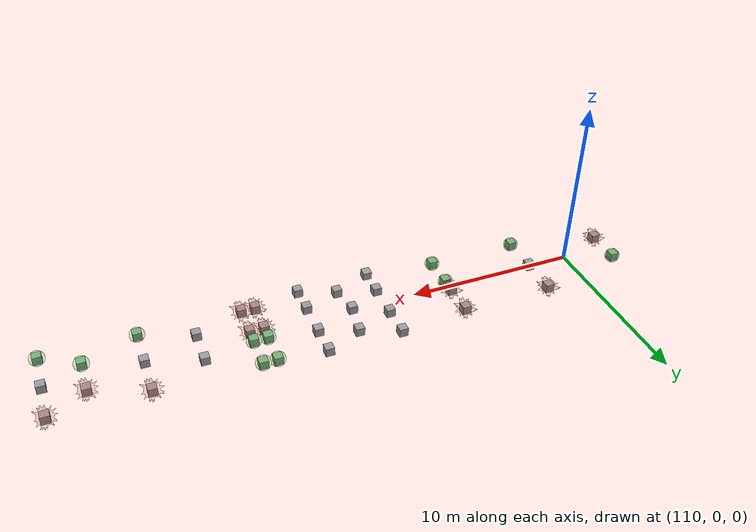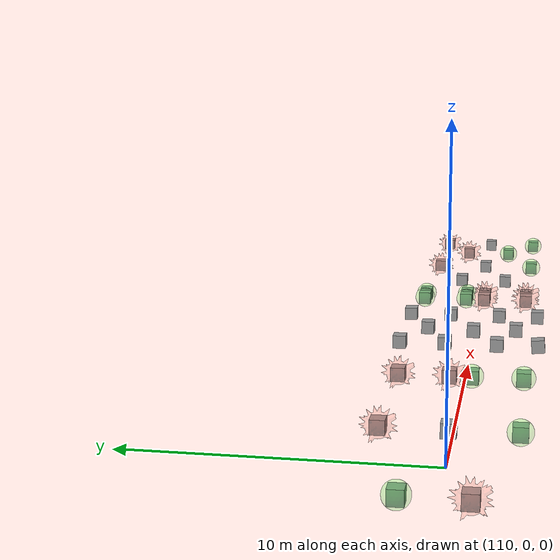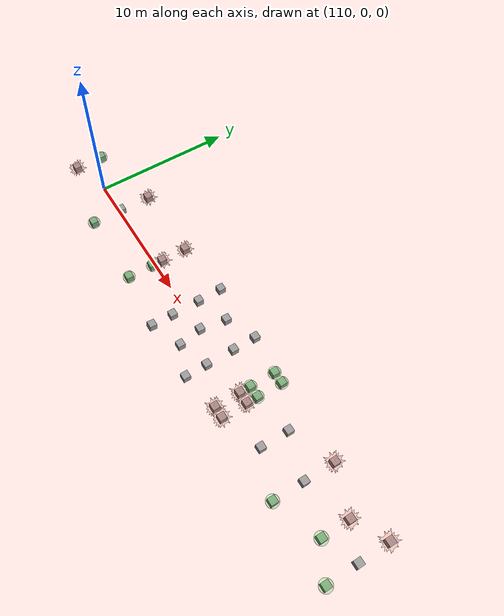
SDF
<sdf version="1.6">
 <world name="default">
  <model name="trap_discr_4_ubias_m">
   <static>0</static>
   <static>0</static>
   <link name="repel_cue_0::vis_cue_repel">
    <inertial>
     <mass>1</mass>
     <inertia>
      <ixx>0.166667</ixx>
      <ixy>0</ixy>
      <ixz>0</ixz>
      <iyy>0.166667</iyy>
      <iyz>0</iyz>
      <izz>0.166667</izz>
     </inertia>
    </inertial>
    <collision name="collision"><geometry><box><size>0.5 0.5 0.5</size></box></geometry></collision>
    <visual name="box_visual">
     <geometry><box><size>0.5 0.5 0.5</size></box></geometry>
     <material>
      <script><name>Gazebo/Grey</name><uri>file://media/materials/scripts/gazebo.material</uri></script>
     </material>
    </visual>
    <visual name="cue_visual">
     <geometry><mesh><uri>model://repelling_cue_2.dae</uri><scale>0.85 0.85 0.85</scale></mesh></geometry>
     <material>
      <ambient>1 0.3 0.2 0.2</ambient>
      <diffuse>1 0.3 0.2 0.2</diffuse>
      <specular>1 0.3 0.2 0.5</specular>
      <emissive>0.5 0 0 0.1</emissive>
     </material>
    </visual>
    <pose>0 -1 0.25 0 -0 0</pose>
   </link>
   <static>0</static>
   <link name="attract_cue_0::vis_cue_attract">
    <inertial>
     <mass>1</mass>
     <inertia>
      <ixx>0.166667</ixx>
      <ixy>0</ixy>
      <ixz>0</ixz>
      <iyy>0.166667</iyy>
      <iyz>0</iyz>
      <izz>0.166667</izz>
     </inertia>
    </inertial>
    <collision name="collision"><geometry><box><size>0.5 0.5 0.5</size></box></geometry></collision>
    <visual name="box_visual">
     <geometry><box><size>0.5 0.5 0.5</size></box></geometry>
     <material>
      <script><name>Gazebo/Grey</name><uri>file://media/materials/scripts/gazebo.material</uri></script>
     </material>
    </visual>
    <visual name="cue_visual">
     <geometry>
      <mesh><uri>model://vis_cue_attract/meshes/sphere.stl</uri><scale>0.85 0.85 0.85</scale></mesh>
     </geometry>
     <material>
      <ambient>0 1 0 0.15</ambient>
      <diffuse>0 1 0 0.15</diffuse>
      <specular>0 1 0 0.15</specular>
      <emissive>0 0 0 0</emissive>
     </material>
    </visual>
    <pose>0 1 0.25 0 -0 0</pose>
   </link>
   <pose>107.352 0.120059 3e-06 7e-06 -7e-06 0</pose>
  </model>
  <model name="trap_discr_3_ubias">
   <static>0</static>
   <static>0</static>
   <link name="attract_cue_0::vis_cue_attract">
    <inertial>
     <mass>1</mass>
     <inertia>
      <ixx>0.166667</ixx>
      <ixy>0</ixy>
      <ixz>0</ixz>
      <iyy>0.166667</iyy>
      <iyz>0</iyz>
      <izz>0.166667</izz>
     </inertia>
    </inertial>
    <collision name="collision"><geometry><box><size>0.5 0.5 0.5</size></box></geometry></collision>
    <visual name="box_visual">
     <geometry><box><size>0.5 0.5 0.5</size></box></geometry>
     <material>
      <script><name>Gazebo/Grey</name><uri>file://media/materials/scripts/gazebo.material</uri></script>
     </material>
    </visual>
    <visual name="cue_visual">
     <geometry>
      <mesh><uri>model://vis_cue_attract/meshes/sphere.stl</uri><scale>0.85 0.85 0.85</scale></mesh>
     </geometry>
     <material>
      <ambient>0 1 0 0.15</ambient>
      <diffuse>0 1 0 0.15</diffuse>
      <specular>0 1 0 0.15</specular>
      <emissive>0 0 0 0</emissive>
     </material>
    </visual>
    <pose>0 -2.2 0.25 0 -0 0</pose>
   </link>
   <static>0</static>
   <link name="normal_cue_0::vis_cue_normal">
    <inertial>
     <mass>1</mass>
     <inertia>
      <ixx>0.166667</ixx>
      <ixy>0</ixy>
      <ixz>0</ixz>
      <iyy>0.166667</iyy>
      <iyz>0</iyz>
      <izz>0.166667</izz>
     </inertia>
    </inertial>
    <collision name="collision"><geometry><box><size>0.5 0.5 0.5</size></box></geometry></collision>
    <visual name="box_visual">
     <geometry><box><size>0.5 0.5 0.5</size></box></geometry>
     <material>
      <script><name>Gazebo/Grey</name><uri>file://media/materials/scripts/gazebo.material</uri></script>
     </material>
    </visual>
    <pose>0 0 0.25 0 -0 0</pose>
   </link>
   <static>0</static>
   <link name="repel_cue_0::vis_cue_repel">
    <inertial>
     <mass>1</mass>
     <inertia>
      <ixx>0.166667</ixx>
      <ixy>0</ixy>
      <ixz>0</ixz>
      <iyy>0.166667</iyy>
      <iyz>0</iyz>
      <izz>0.166667</izz>
     </inertia>
    </inertial>
    <collision name="collision"><geometry><box><size>0.5 0.5 0.5</size></box></geometry></collision>
    <visual name="box_visual">
     <geometry><box><size>0.5 0.5 0.5</size></box></geometry>
     <material>
      <script><name>Gazebo/Grey</name><uri>file://media/materials/scripts/gazebo.material</uri></script>
     </material>
    </visual>
    <visual name="cue_visual">
     <geometry><mesh><uri>model://repelling_cue_2.dae</uri><scale>0.85 0.85 0.85</scale></mesh></geometry>
     <material>
      <ambient>1 0.3 0.2 0.2</ambient>
      <diffuse>1 0.3 0.2 0.2</diffuse>
      <specular>1 0.3 0.2 0.5</specular>
      <emissive>0.5 0 0 0.1</emissive>
     </material>
    </visual>
    <pose>0 2.2 0.25 0 -0 0</pose>
   </link>
   <pose>112.553 0.127138 -2e-05 -7e-06 7e-06 0</pose>
  </model>
  <model name="trap_discr_2_ubias_0">
   <static>0</static>
   <static>0</static>
   <link name="attract_cue_0::vis_cue_attract">
    <inertial>
     <mass>1</mass>
     <inertia>
      <ixx>0.166667</ixx>
      <ixy>0</ixy>
      <ixz>0</ixz>
      <iyy>0.166667</iyy>
      <iyz>0</iyz>
      <izz>0.166667</izz>
     </inertia>
    </inertial>
    <collision name="collision"><geometry><box><size>0.5 0.5 0.5</size></box></geometry></collision>
    <visual name="box_visual">
     <geometry><box><size>0.5 0.5 0.5</size></box></geometry>
     <material>
      <script><name>Gazebo/Grey</name><uri>file://media/materials/scripts/gazebo.material</uri></script>
     </material>
    </visual>
    <visual name="cue_visual">
     <geometry>
      <mesh><uri>model://vis_cue_attract/meshes/sphere.stl</uri><scale>0.85 0.85 0.85</scale></mesh>
     </geometry>
     <material>
      <ambient>0 1 0 0.15</ambient>
      <diffuse>0 1 0 0.15</diffuse>
      <specular>0 1 0 0.15</specular>
      <emissive>0 0 0 0</emissive>
     </material>
    </visual>
    <pose>0 -2.2 0.25 0 -0 0</pose>
   </link>
   <static>0</static>
   <link name="attract_cue_1::vis_cue_attract">
    <inertial>
     <mass>1</mass>
     <inertia>
      <ixx>0.166667</ixx>
      <ixy>0</ixy>
      <ixz>0</ixz>
      <iyy>0.166667</iyy>
      <iyz>0</iyz>
      <izz>0.166667</izz>
     </inertia>
    </inertial>
    <collision name="collision"><geometry><box><size>0.5 0.5 0.5</size></box></geometry></collision>
    <visual name="box_visual">
     <geometry><box><size>0.5 0.5 0.5</size></box></geometry>
     <material>
      <script><name>Gazebo/Grey</name><uri>file://media/materials/scripts/gazebo.material</uri></script>
     </material>
    </visual>
    <visual name="cue_visual">
     <geometry>
      <mesh><uri>model://vis_cue_attract/meshes/sphere.stl</uri><scale>0.85 0.85 0.85</scale></mesh>
     </geometry>
     <material>
      <ambient>0 1 0 0.15</ambient>
      <diffuse>0 1 0 0.15</diffuse>
      <specular>0 1 0 0.15</specular>
      <emissive>0 0 0 0</emissive>
     </material>
    </visual>
    <pose>0 -0.39 0.25 0 -0 0</pose>
   </link>
   <static>0</static>
   <link name="repel_cue_2::vis_cue_repel">
    <inertial>
     <mass>1</mass>
     <inertia>
      <ixx>0.166667</ixx>
      <ixy>0</ixy>
      <ixz>0</ixz>
      <iyy>0.166667</iyy>
      <iyz>0</iyz>
      <izz>0.166667</izz>
     </inertia>
    </inertial>
    <collision name="collision"><geometry><box><size>0.5 0.5 0.5</size></box></geometry></collision>
    <visual name="box_visual">
     <geometry><box><size>0.5 0.5 0.5</size></box></geometry>
     <material>
      <script><name>Gazebo/Grey</name><uri>file://media/materials/scripts/gazebo.material</uri></script>
     </material>
    </visual>
    <visual name="cue_visual">
     <geometry><mesh><uri>model://repelling_cue_2.dae</uri><scale>0.85 0.85 0.85</scale></mesh></geometry>
     <material>
      <ambient>1 0.3 0.2 0.2</ambient>
      <diffuse>1 0.3 0.2 0.2</diffuse>
      <specular>1 0.3 0.2 0.5</specular>
      <emissive>0.5 0 0 0.1</emissive>
     </material>
    </visual>
    <pose>0 2.2 0.25 0 -0 0</pose>
   </link>
   <static>0</static>
   <link name="repel_cue_3::vis_cue_repel">
    <inertial>
     <mass>1</mass>
     <inertia>
      <ixx>0.166667</ixx>
      <ixy>0</ixy>
      <ixz>0</ixz>
      <iyy>0.166667</iyy>
      <iyz>0</iyz>
      <izz>0.166667</izz>
     </inertia>
    </inertial>
    <collision name="collision"><geometry><box><size>0.5 0.5 0.5</size></box></geometry></collision>
    <visual name="box_visual">
     <geometry><box><size>0.5 0.5 0.5</size></box></geometry>
     <material>
      <script><name>Gazebo/Grey</name><uri>file://media/materials/scripts/gazebo.material</uri></script>
     </material>
    </visual>
    <visual name="cue_visual">
     <geometry><mesh><uri>model://repelling_cue_2.dae</uri><scale>0.85 0.85 0.85</scale></mesh></geometry>
     <material>
      <ambient>1 0.3 0.2 0.2</ambient>
      <diffuse>1 0.3 0.2 0.2</diffuse>
      <specular>1 0.3 0.2 0.5</specular>
      <emissive>0.5 0 0 0.1</emissive>
     </material>
    </visual>
    <pose>0 0.39 0.25 0 -0 0</pose>
   </link>
   <pose>117.895 0.138388 -2e-05 -7e-06 7e-06 0</pose>
  </model>
  <model name="trap_discr_4_ubias_n">
   <static>0</static>
   <static>0</static>
   <link name="normal_cue_0::vis_cue_normal">
    <inertial>
     <mass>1</mass>
     <inertia>
      <ixx>0.166667</ixx>
      <ixy>0</ixy>
      <ixz>0</ixz>
      <iyy>0.166667</iyy>
      <iyz>0</iyz>
      <izz>0.166667</izz>
     </inertia>
    </inertial>
    <collision name="collision"><geometry><box><size>0.5 0.5 0.5</size></box></geometry></collision>
    <visual name="box_visual">
     <geometry><box><size>0.5 0.5 0.5</size></box></geometry>
     <material>
      <script><name>Gazebo/Grey</name><uri>file://media/materials/scripts/gazebo.material</uri></script>
     </material>
    </visual>
    <pose>0 -1 0.25 0 -0 0</pose>
   </link>
   <static>0</static>
   <link name="normal_cue_1::vis_cue_normal">
    <inertial>
     <mass>1</mass>
     <inertia>
      <ixx>0.166667</ixx>
      <ixy>0</ixy>
      <ixz>0</ixz>
      <iyy>0.166667</iyy>
      <iyz>0</iyz>
      <izz>0.166667</izz>
     </inertia>
    </inertial>
    <collision name="collision"><geometry><box><size>0.5 0.5 0.5</size></box></geometry></collision>
    <visual name="box_visual">
     <geometry><box><size>0.5 0.5 0.5</size></box></geometry>
     <material>
      <script><name>Gazebo/Grey</name><uri>file://media/materials/scripts/gazebo.material</uri></script>
     </material>
    </visual>
    <pose>0 1 0.25 0 -0 0</pose>
   </link>
   <pose>121.962 0.039435 -1.1e-05 -7e-06 7e-06 0</pose>
  </model>
  <model name="vis_cue_normal_12">
   <static>0</static>
   <pose>123.829 0.039946 0.249994 7e-06 -7e-06 0</pose>
   <link name="vis_cue_normal">
    <inertial>
     <mass>1</mass>
     <inertia>
      <ixx>0.166667</ixx>
      <ixy>0</ixy>
      <ixz>0</ixz>
      <iyy>0.166667</iyy>
      <iyz>0</iyz>
      <izz>0.166667</izz>
     </inertia>
    </inertial>
    <collision name="collision"><geometry><box><size>0.5 0.5 0.5</size></box></geometry></collision>
    <visual name="box_visual">
     <geometry><box><size>0.5 0.5 0.5</size></box></geometry>
     <material>
      <script><name>Gazebo/Grey</name><uri>file://media/materials/scripts/gazebo.material</uri></script>
     </material>
    </visual>
   </link>
  </model>
  <model name="vis_cue_normal_13">
   <static>0</static>
   <pose>124.117 1.8776 0.249997 -6e-06 6e-06 0</pose>
   <link name="vis_cue_normal">
    <inertial>
     <mass>1</mass>
     <inertia>
      <ixx>0.166667</ixx>
      <ixy>0</ixy>
      <ixz>0</ixz>
      <iyy>0.166667</iyy>
      <iyz>0</iyz>
      <izz>0.166667</izz>
     </inertia>
    </inertial>
    <collision name="collision"><geometry><box><size>0.5 0.5 0.5</size></box></geometry></collision>
    <visual name="box_visual">
     <geometry><box><size>0.5 0.5 0.5</size></box></geometry>
     <material>
      <script><name>Gazebo/Grey</name><uri>file://media/materials/scripts/gazebo.material</uri></script>
     </material>
    </visual>
   </link>
  </model>
  <model name="vis_cue_normal_14">
   <static>0</static>
   <pose>124.141 -1.62594 0.249997 -6e-06 6e-06 0</pose>
   <link name="vis_cue_normal">
    <inertial>
     <mass>1</mass>
     <inertia>
      <ixx>0.166667</ixx>
      <ixy>0</ixy>
      <ixz>0</ixz>
      <iyy>0.166667</iyy>
      <iyz>0</iyz>
      <izz>0.166667</izz>
     </inertia>
    </inertial>
    <collision name="collision"><geometry><box><size>0.5 0.5 0.5</size></box></geometry></collision>
    <visual name="box_visual">
     <geometry><box><size>0.5 0.5 0.5</size></box></geometry>
     <material>
      <script><name>Gazebo/Grey</name><uri>file://media/materials/scripts/gazebo.material</uri></script>
     </material>
    </visual>
   </link>
  </model>
  <model name="trap_discr_4_ubias_n_0">
   <static>0</static>
   <static>0</static>
   <link name="normal_cue_0::vis_cue_normal">
    <inertial>
     <mass>1</mass>
     <inertia>
      <ixx>0.166667</ixx>
      <ixy>0</ixy>
      <ixz>0</ixz>
      <iyy>0.166667</iyy>
      <iyz>0</iyz>
      <izz>0.166667</izz>
     </inertia>
    </inertial>
    <collision name="collision"><geometry><box><size>0.5 0.5 0.5</size></box></geometry></collision>
    <visual name="box_visual">
     <geometry><box><size>0.5 0.5 0.5</size></box></geometry>
     <material>
      <script><name>Gazebo/Grey</name><uri>file://media/materials/scripts/gazebo.material</uri></script>
     </material>
    </visual>
    <pose>0 -1 0.25 0 -0 0</pose>
   </link>
   <static>0</static>
   <link name="normal_cue_1::vis_cue_normal">
    <inertial>
     <mass>1</mass>
     <inertia>
      <ixx>0.166667</ixx>
      <ixy>0</ixy>
      <ixz>0</ixz>
      <iyy>0.166667</iyy>
      <iyz>0</iyz>
      <izz>0.166667</izz>
     </inertia>
    </inertial>
    <collision name="collision"><geometry><box><size>0.5 0.5 0.5</size></box></geometry></collision>
    <visual name="box_visual">
     <geometry><box><size>0.5 0.5 0.5</size></box></geometry>
     <material>
      <script><name>Gazebo/Grey</name><uri>file://media/materials/scripts/gazebo.material</uri></script>
     </material>
    </visual>
    <pose>0 1 0.25 0 -0 0</pose>
   </link>
   <pose>126.213 0.112615 1e-06 7e-06 -7e-06 0</pose>
  </model>
  <model name="trap_discr_2_ubias_1">
   <static>0</static>
   <static>0</static>
   <link name="repel_cue_0::vis_cue_repel">
    <inertial>
     <mass>1</mass>
     <inertia>
      <ixx>0.166667</ixx>
      <ixy>0</ixy>
      <ixz>0</ixz>
      <iyy>0.166667</iyy>
      <iyz>0</iyz>
      <izz>0.166667</izz>
     </inertia>
    </inertial>
    <collision name="collision"><geometry><box><size>0.5 0.5 0.5</size></box></geometry></collision>
    <visual name="box_visual">
     <geometry><box><size>0.5 0.5 0.5</size></box></geometry>
     <material>
      <script><name>Gazebo/Grey</name><uri>file://media/materials/scripts/gazebo.material</uri></script>
     </material>
    </visual>
    <visual name="cue_visual">
     <geometry><mesh><uri>model://repelling_cue_2.dae</uri><scale>0.85 0.85 0.85</scale></mesh></geometry>
     <material>
      <ambient>1 0.3 0.2 0.2</ambient>
      <diffuse>1 0.3 0.2 0.2</diffuse>
      <specular>1 0.3 0.2 0.5</specular>
      <emissive>0.5 0 0 0.1</emissive>
     </material>
    </visual>
    <pose>0 -2.2 0.25 0 -0 0</pose>
   </link>
   <static>0</static>
   <link name="repel_cue_1::vis_cue_repel">
    <inertial>
     <mass>1</mass>
     <inertia>
      <ixx>0.166667</ixx>
      <ixy>0</ixy>
      <ixz>0</ixz>
      <iyy>0.166667</iyy>
      <iyz>0</iyz>
      <izz>0.166667</izz>
     </inertia>
    </inertial>
    <collision name="collision"><geometry><box><size>0.5 0.5 0.5</size></box></geometry></collision>
    <visual name="box_visual">
     <geometry><box><size>0.5 0.5 0.5</size></box></geometry>
     <material>
      <script><name>Gazebo/Grey</name><uri>file://media/materials/scripts/gazebo.material</uri></script>
     </material>
    </visual>
    <visual name="cue_visual">
     <geometry><mesh><uri>model://repelling_cue_2.dae</uri><scale>0.85 0.85 0.85</scale></mesh></geometry>
     <material>
      <ambient>1 0.3 0.2 0.2</ambient>
      <diffuse>1 0.3 0.2 0.2</diffuse>
      <specular>1 0.3 0.2 0.5</specular>
      <emissive>0.5 0 0 0.1</emissive>
     </material>
    </visual>
    <pose>0 -0.39 0.25 0 -0 0</pose>
   </link>
   <static>0</static>
   <link name="attract_cue_0::vis_cue_attract">
    <inertial>
     <mass>1</mass>
     <inertia>
      <ixx>0.166667</ixx>
      <ixy>0</ixy>
      <ixz>0</ixz>
      <iyy>0.166667</iyy>
      <iyz>0</iyz>
      <izz>0.166667</izz>
     </inertia>
    </inertial>
    <collision name="collision"><geometry><box><size>0.5 0.5 0.5</size></box></geometry></collision>
    <visual name="box_visual">
     <geometry><box><size>0.5 0.5 0.5</size></box></geometry>
     <material>
      <script><name>Gazebo/Grey</name><uri>file://media/materials/scripts/gazebo.material</uri></script>
     </material>
    </visual>
    <visual name="cue_visual">
     <geometry>
      <mesh><uri>model://vis_cue_attract/meshes/sphere.stl</uri><scale>0.85 0.85 0.85</scale></mesh>
     </geometry>
     <material>
      <ambient>0 1 0 0.15</ambient>
      <diffuse>0 1 0 0.15</diffuse>
      <specular>0 1 0 0.15</specular>
      <emissive>0 0 0 0</emissive>
     </material>
    </visual>
    <pose>0 0.39 0.25 0 -0 0</pose>
   </link>
   <static>0</static>
   <link name="attract_cue_1::vis_cue_attract">
    <inertial>
     <mass>1</mass>
     <inertia>
      <ixx>0.166667</ixx>
      <ixy>0</ixy>
      <ixz>0</ixz>
      <iyy>0.166667</iyy>
      <iyz>0</iyz>
      <izz>0.166667</izz>
     </inertia>
    </inertial>
    <collision name="collision"><geometry><box><size>0.5 0.5 0.5</size></box></geometry></collision>
    <visual name="box_visual">
     <geometry><box><size>0.5 0.5 0.5</size></box></geometry>
     <material>
      <script><name>Gazebo/Grey</name><uri>file://media/materials/scripts/gazebo.material</uri></script>
     </material>
    </visual>
    <visual name="cue_visual">
     <geometry>
      <mesh><uri>model://vis_cue_attract/meshes/sphere.stl</uri><scale>0.85 0.85 0.85</scale></mesh>
     </geometry>
     <material>
      <ambient>0 1 0 0.15</ambient>
      <diffuse>0 1 0 0.15</diffuse>
      <specular>0 1 0 0.15</specular>
      <emissive>0 0 0 0</emissive>
     </material>
    </visual>
    <pose>0 2.2 0.25 0 -0 0</pose>
   </link>
   <pose>128.912 0.271479 -1.6e-05 -6e-06 6e-06 0</pose>
  </model>
  <model name="vis_cue_normal_15">
   <static>0</static>
   <pose>121.938 2.76788 0.249997 -6e-06 6e-06 0</pose>
   <link name="vis_cue_normal">
    <inertial>
     <mass>1</mass>
     <inertia>
      <ixx>0.166667</ixx>
      <ixy>0</ixy>
      <ixz>0</ixz>
      <iyy>0.166667</iyy>
      <iyz>0</iyz>
      <izz>0.166667</izz>
     </inertia>
    </inertial>
    <collision name="collision"><geometry><box><size>0.5 0.5 0.5</size></box></geometry></collision>
    <visual name="box_visual">
     <geometry><box><size>0.5 0.5 0.5</size></box></geometry>
     <material>
      <script><name>Gazebo/Grey</name><uri>file://media/materials/scripts/gazebo.material</uri></script>
     </material>
    </visual>
   </link>
  </model>
  <model name="vis_cue_normal_16">
   <static>0</static>
   <pose>121.964 -2.52194 0.273852 -0.100648 8e-06 -3e-06</pose>
   <link name="vis_cue_normal">
    <inertial>
     <mass>1</mass>
     <inertia>
      <ixx>0.166667</ixx>
      <ixy>0</ixy>
      <ixz>0</ixz>
      <iyy>0.166667</iyy>
      <iyz>0</iyz>
      <izz>0.166667</izz>
     </inertia>
    </inertial>
    <collision name="collision"><geometry><box><size>0.5 0.5 0.5</size></box></geometry></collision>
    <visual name="box_visual">
     <geometry><box><size>0.5 0.5 0.5</size></box></geometry>
     <material>
      <script><name>Gazebo/Grey</name><uri>file://media/materials/scripts/gazebo.material</uri></script>
     </material>
    </visual>
   </link>
  </model>
  <model name="vis_cue_normal_17">
   <static>0</static>
   <pose>126.189 2.77088 0.249992 -5e-06 3e-06 3e-06</pose>
   <link name="vis_cue_normal">
    <inertial>
     <mass>1</mass>
     <inertia>
      <ixx>0.166667</ixx>
      <ixy>0</ixy>
      <ixz>0</ixz>
      <iyy>0.166667</iyy>
      <iyz>0</iyz>
      <izz>0.166667</izz>
     </inertia>
    </inertial>
    <collision name="collision"><geometry><box><size>0.5 0.5 0.5</size></box></geometry></collision>
    <visual name="box_visual">
     <geometry><box><size>0.5 0.5 0.5</size></box></geometry>
     <material>
      <script><name>Gazebo/Grey</name><uri>file://media/materials/scripts/gazebo.material</uri></script>
     </material>
    </visual>
   </link>
  </model>
  <model name="vis_cue_normal_18">
   <static>0</static>
   <pose>126.234 -2.45464 0.249997 -6e-06 6e-06 0</pose>
   <link name="vis_cue_normal">
    <inertial>
     <mass>1</mass>
     <inertia>
      <ixx>0.166667</ixx>
      <ixy>0</ixy>
      <ixz>0</ixz>
      <iyy>0.166667</iyy>
      <iyz>0</iyz>
      <izz>0.166667</izz>
     </inertia>
    </inertial>
    <collision name="collision"><geometry><box><size>0.5 0.5 0.5</size></box></geometry></collision>
    <visual name="box_visual">
     <geometry><box><size>0.5 0.5 0.5</size></box></geometry>
     <material>
      <script><name>Gazebo/Grey</name><uri>file://media/materials/scripts/gazebo.material</uri></script>
     </material>
    </visual>
   </link>
  </model>
  <model name="trap_discr_2_ubias_2">
   <static>0</static>
   <static>0</static>
   <link name="repel_cue_0::vis_cue_repel">
    <inertial>
     <mass>1</mass>
     <inertia>
      <ixx>0.166667</ixx>
      <ixy>0</ixy>
      <ixz>0</ixz>
      <iyy>0.166667</iyy>
      <iyz>0</iyz>
      <izz>0.166667</izz>
     </inertia>
    </inertial>
    <collision name="collision"><geometry><box><size>0.5 0.5 0.5</size></box></geometry></collision>
    <visual name="box_visual">
     <geometry><box><size>0.5 0.5 0.5</size></box></geometry>
     <material>
      <script><name>Gazebo/Grey</name><uri>file://media/materials/scripts/gazebo.material</uri></script>
     </material>
    </visual>
    <visual name="cue_visual">
     <geometry><mesh><uri>model://repelling_cue_2.dae</uri><scale>0.85 0.85 0.85</scale></mesh></geometry>
     <material>
      <ambient>1 0.3 0.2 0.2</ambient>
      <diffuse>1 0.3 0.2 0.2</diffuse>
      <specular>1 0.3 0.2 0.5</specular>
      <emissive>0.5 0 0 0.1</emissive>
     </material>
    </visual>
    <pose>0 -2.2 0.25 0 -0 0</pose>
   </link>
   <static>0</static>
   <link name="repel_cue_1::vis_cue_repel">
    <inertial>
     <mass>1</mass>
     <inertia>
      <ixx>0.166667</ixx>
      <ixy>0</ixy>
      <ixz>0</ixz>
      <iyy>0.166667</iyy>
      <iyz>0</iyz>
      <izz>0.166667</izz>
     </inertia>
    </inertial>
    <collision name="collision"><geometry><box><size>0.5 0.5 0.5</size></box></geometry></collision>
    <visual name="box_visual">
     <geometry><box><size>0.5 0.5 0.5</size></box></geometry>
     <material>
      <script><name>Gazebo/Grey</name><uri>file://media/materials/scripts/gazebo.material</uri></script>
     </material>
    </visual>
    <visual name="cue_visual">
     <geometry><mesh><uri>model://repelling_cue_2.dae</uri><scale>0.85 0.85 0.85</scale></mesh></geometry>
     <material>
      <ambient>1 0.3 0.2 0.2</ambient>
      <diffuse>1 0.3 0.2 0.2</diffuse>
      <specular>1 0.3 0.2 0.5</specular>
      <emissive>0.5 0 0 0.1</emissive>
     </material>
    </visual>
    <pose>0 -0.39 0.25 0 -0 0</pose>
   </link>
   <static>0</static>
   <link name="attract_cue_0::vis_cue_attract">
    <inertial>
     <mass>1</mass>
     <inertia>
      <ixx>0.166667</ixx>
      <ixy>0</ixy>
      <ixz>0</ixz>
      <iyy>0.166667</iyy>
      <iyz>0</iyz>
      <izz>0.166667</izz>
     </inertia>
    </inertial>
    <collision name="collision"><geometry><box><size>0.5 0.5 0.5</size></box></geometry></collision>
    <visual name="box_visual">
     <geometry><box><size>0.5 0.5 0.5</size></box></geometry>
     <material>
      <script><name>Gazebo/Grey</name><uri>file://media/materials/scripts/gazebo.material</uri></script>
     </material>
    </visual>
    <visual name="cue_visual">
     <geometry>
      <mesh><uri>model://vis_cue_attract/meshes/sphere.stl</uri><scale>0.85 0.85 0.85</scale></mesh>
     </geometry>
     <material>
      <ambient>0 1 0 0.15</ambient>
      <diffuse>0 1 0 0.15</diffuse>
      <specular>0 1 0 0.15</specular>
      <emissive>0 0 0 0</emissive>
     </material>
    </visual>
    <pose>0 0.39 0.25 0 -0 0</pose>
   </link>
   <static>0</static>
   <link name="attract_cue_1::vis_cue_attract">
    <inertial>
     <mass>1</mass>
     <inertia>
      <ixx>0.166667</ixx>
      <ixy>0</ixy>
      <ixz>0</ixz>
      <iyy>0.166667</iyy>
      <iyz>0</iyz>
      <izz>0.166667</izz>
     </inertia>
    </inertial>
    <collision name="collision"><geometry><box><size>0.5 0.5 0.5</size></box></geometry></collision>
    <visual name="box_visual">
     <geometry><box><size>0.5 0.5 0.5</size></box></geometry>
     <material>
      <script><name>Gazebo/Grey</name><uri>file://media/materials/scripts/gazebo.material</uri></script>
     </material>
    </visual>
    <visual name="cue_visual">
     <geometry>
      <mesh><uri>model://vis_cue_attract/meshes/sphere.stl</uri><scale>0.85 0.85 0.85</scale></mesh>
     </geometry>
     <material>
      <ambient>0 1 0 0.15</ambient>
      <diffuse>0 1 0 0.15</diffuse>
      <specular>0 1 0 0.15</specular>
      <emissive>0 0 0 0</emissive>
     </material>
    </visual>
    <pose>0 2.2 0.25 0 -0 0</pose>
   </link>
   <pose>129.72 0.273152 1e-05 7e-06 -7e-06 0</pose>
  </model>
  <model name="trap_discr_4_ubias_n_1">
   <static>0</static>
   <static>0</static>
   <link name="normal_cue_0::vis_cue_normal">
    <inertial>
     <mass>1</mass>
     <inertia>
      <ixx>0.166667</ixx>
      <ixy>0</ixy>
      <ixz>0</ixz>
      <iyy>0.166667</iyy>
      <iyz>0</iyz>
      <izz>0.166667</izz>
     </inertia>
    </inertial>
    <collision name="collision"><geometry><box><size>0.5 0.5 0.5</size></box></geometry></collision>
    <visual name="box_visual">
     <geometry><box><size>0.5 0.5 0.5</size></box></geometry>
     <material>
      <script><name>Gazebo/Grey</name><uri>file://media/materials/scripts/gazebo.material</uri></script>
     </material>
    </visual>
    <pose>0 -1 0.25 0 -0 0</pose>
   </link>
   <static>0</static>
   <link name="normal_cue_1::vis_cue_normal">
    <inertial>
     <mass>1</mass>
     <inertia>
      <ixx>0.166667</ixx>
      <ixy>0</ixy>
      <ixz>0</ixz>
      <iyy>0.166667</iyy>
      <iyz>0</iyz>
      <izz>0.166667</izz>
     </inertia>
    </inertial>
    <collision name="collision"><geometry><box><size>0.5 0.5 0.5</size></box></geometry></collision>
    <visual name="box_visual">
     <geometry><box><size>0.5 0.5 0.5</size></box></geometry>
     <material>
      <script><name>Gazebo/Grey</name><uri>file://media/materials/scripts/gazebo.material</uri></script>
     </material>
    </visual>
    <pose>0 1 0.25 0 -0 0</pose>
   </link>
   <pose>132.493 0.085179 1e-06 7e-06 -7e-06 0</pose>
  </model>
  <model name="trap_discr_3_ubias_0">
   <static>0</static>
   <static>0</static>
   <link name="attract_cue_0::vis_cue_attract">
    <inertial>
     <mass>1</mass>
     <inertia>
      <ixx>0.166667</ixx>
      <ixy>0</ixy>
      <ixz>0</ixz>
      <iyy>0.166667</iyy>
      <iyz>0</iyz>
      <izz>0.166667</izz>
     </inertia>
    </inertial>
    <collision name="collision"><geometry><box><size>0.5 0.5 0.5</size></box></geometry></collision>
    <visual name="box_visual">
     <geometry><box><size>0.5 0.5 0.5</size></box></geometry>
     <material>
      <script><name>Gazebo/Grey</name><uri>file://media/materials/scripts/gazebo.material</uri></script>
     </material>
    </visual>
    <visual name="cue_visual">
     <geometry>
      <mesh><uri>model://vis_cue_attract/meshes/sphere.stl</uri><scale>0.85 0.85 0.85</scale></mesh>
     </geometry>
     <material>
      <ambient>0 1 0 0.15</ambient>
      <diffuse>0 1 0 0.15</diffuse>
      <specular>0 1 0 0.15</specular>
      <emissive>0 0 0 0</emissive>
     </material>
    </visual>
    <pose>0 -2.2 0.25 0 -0 0</pose>
   </link>
   <static>0</static>
   <link name="normal_cue_0::vis_cue_normal">
    <inertial>
     <mass>1</mass>
     <inertia>
      <ixx>0.166667</ixx>
      <ixy>0</ixy>
      <ixz>0</ixz>
      <iyy>0.166667</iyy>
      <iyz>0</iyz>
      <izz>0.166667</izz>
     </inertia>
    </inertial>
    <collision name="collision"><geometry><box><size>0.5 0.5 0.5</size></box></geometry></collision>
    <visual name="box_visual">
     <geometry><box><size>0.5 0.5 0.5</size></box></geometry>
     <material>
      <script><name>Gazebo/Grey</name><uri>file://media/materials/scripts/gazebo.material</uri></script>
     </material>
    </visual>
    <pose>0 0 0.25 0 -0 0</pose>
   </link>
   <static>0</static>
   <link name="repel_cue_0::vis_cue_repel">
    <inertial>
     <mass>1</mass>
     <inertia>
      <ixx>0.166667</ixx>
      <ixy>0</ixy>
      <ixz>0</ixz>
      <iyy>0.166667</iyy>
      <iyz>0</iyz>
      <izz>0.166667</izz>
     </inertia>
    </inertial>
    <collision name="collision"><geometry><box><size>0.5 0.5 0.5</size></box></geometry></collision>
    <visual name="box_visual">
     <geometry><box><size>0.5 0.5 0.5</size></box></geometry>
     <material>
      <script><name>Gazebo/Grey</name><uri>file://media/materials/scripts/gazebo.material</uri></script>
     </material>
    </visual>
    <visual name="cue_visual">
     <geometry><mesh><uri>model://repelling_cue_2.dae</uri><scale>0.85 0.85 0.85</scale></mesh></geometry>
     <material>
      <ambient>1 0.3 0.2 0.2</ambient>
      <diffuse>1 0.3 0.2 0.2</diffuse>
      <specular>1 0.3 0.2 0.5</specular>
      <emissive>0.5 0 0 0.1</emissive>
     </material>
    </visual>
    <pose>0 2.2 0.25 0 -0 0</pose>
   </link>
   <pose>135.48 0.124761 2e-06 4e-06 -4e-06 0</pose>
  </model>
  <model name="trap_discr_4_ubias">
   <static>0</static>
   <static>0</static>
   <link name="attract_cue_0::vis_cue_attract">
    <inertial>
     <mass>1</mass>
     <inertia>
      <ixx>0.166667</ixx>
      <ixy>0</ixy>
      <ixz>0</ixz>
      <iyy>0.166667</iyy>
      <iyz>0</iyz>
      <izz>0.166667</izz>
     </inertia>
    </inertial>
    <collision name="collision"><geometry><box><size>0.5 0.5 0.5</size></box></geometry></collision>
    <visual name="box_visual">
     <geometry><box><size>0.5 0.5 0.5</size></box></geometry>
     <material>
      <script><name>Gazebo/Grey</name><uri>file://media/materials/scripts/gazebo.material</uri></script>
     </material>
    </visual>
    <visual name="cue_visual">
     <geometry>
      <mesh><uri>model://vis_cue_attract/meshes/sphere.stl</uri><scale>0.85 0.85 0.85</scale></mesh>
     </geometry>
     <material>
      <ambient>0 1 0 0.15</ambient>
      <diffuse>0 1 0 0.15</diffuse>
      <specular>0 1 0 0.15</specular>
      <emissive>0 0 0 0</emissive>
     </material>
    </visual>
    <pose>0 -1 0.25 0 -0 0</pose>
   </link>
   <static>0</static>
   <link name="repel_cue_0::vis_cue_repel">
    <inertial>
     <mass>1</mass>
     <inertia>
      <ixx>0.166667</ixx>
      <ixy>0</ixy>
      <ixz>0</ixz>
      <iyy>0.166667</iyy>
      <iyz>0</iyz>
      <izz>0.166667</izz>
     </inertia>
    </inertial>
    <collision name="collision"><geometry><box><size>0.5 0.5 0.5</size></box></geometry></collision>
    <visual name="box_visual">
     <geometry><box><size>0.5 0.5 0.5</size></box></geometry>
     <material>
      <script><name>Gazebo/Grey</name><uri>file://media/materials/scripts/gazebo.material</uri></script>
     </material>
    </visual>
    <visual name="cue_visual">
     <geometry><mesh><uri>model://repelling_cue_2.dae</uri><scale>0.85 0.85 0.85</scale></mesh></geometry>
     <material>
      <ambient>1 0.3 0.2 0.2</ambient>
      <diffuse>1 0.3 0.2 0.2</diffuse>
      <specular>1 0.3 0.2 0.5</specular>
      <emissive>0.5 0 0 0.1</emissive>
     </material>
    </visual>
    <pose>0 1 0.25 0 -0 0</pose>
   </link>
   <pose>138.574 0.120488 -5e-06 3e-06 -5e-06 0</pose>
  </model>
  <model name="trap_discr_3_ubias_1">
   <static>0</static>
   <static>0</static>
   <link name="attract_cue_0::vis_cue_attract">
    <inertial>
     <mass>1</mass>
     <inertia>
      <ixx>0.166667</ixx>
      <ixy>0</ixy>
      <ixz>0</ixz>
      <iyy>0.166667</iyy>
      <iyz>0</iyz>
      <izz>0.166667</izz>
     </inertia>
    </inertial>
    <collision name="collision"><geometry><box><size>0.5 0.5 0.5</size></box></geometry></collision>
    <visual name="box_visual">
     <geometry><box><size>0.5 0.5 0.5</size></box></geometry>
     <material>
      <script><name>Gazebo/Grey</name><uri>file://media/materials/scripts/gazebo.material</uri></script>
     </material>
    </visual>
    <visual name="cue_visual">
     <geometry>
      <mesh><uri>model://vis_cue_attract/meshes/sphere.stl</uri><scale>0.85 0.85 0.85</scale></mesh>
     </geometry>
     <material>
      <ambient>0 1 0 0.15</ambient>
      <diffuse>0 1 0 0.15</diffuse>
      <specular>0 1 0 0.15</specular>
      <emissive>0 0 0 0</emissive>
     </material>
    </visual>
    <pose>0 -2.2 0.25 0 -0 0</pose>
   </link>
   <static>0</static>
   <link name="normal_cue_0::vis_cue_normal">
    <inertial>
     <mass>1</mass>
     <inertia>
      <ixx>0.166667</ixx>
      <ixy>0</ixy>
      <ixz>0</ixz>
      <iyy>0.166667</iyy>
      <iyz>0</iyz>
      <izz>0.166667</izz>
     </inertia>
    </inertial>
    <collision name="collision"><geometry><box><size>0.5 0.5 0.5</size></box></geometry></collision>
    <visual name="box_visual">
     <geometry><box><size>0.5 0.5 0.5</size></box></geometry>
     <material>
      <script><name>Gazebo/Grey</name><uri>file://media/materials/scripts/gazebo.material</uri></script>
     </material>
    </visual>
    <pose>0 0 0.25 0 -0 0</pose>
   </link>
   <static>0</static>
   <link name="repel_cue_0::vis_cue_repel">
    <inertial>
     <mass>1</mass>
     <inertia>
      <ixx>0.166667</ixx>
      <ixy>0</ixy>
      <ixz>0</ixz>
      <iyy>0.166667</iyy>
      <iyz>0</iyz>
      <izz>0.166667</izz>
     </inertia>
    </inertial>
    <collision name="collision"><geometry><box><size>0.5 0.5 0.5</size></box></geometry></collision>
    <visual name="box_visual">
     <geometry><box><size>0.5 0.5 0.5</size></box></geometry>
     <material>
      <script><name>Gazebo/Grey</name><uri>file://media/materials/scripts/gazebo.material</uri></script>
     </material>
    </visual>
    <visual name="cue_visual">
     <geometry><mesh><uri>model://repelling_cue_2.dae</uri><scale>0.85 0.85 0.85</scale></mesh></geometry>
     <material>
      <ambient>1 0.3 0.2 0.2</ambient>
      <diffuse>1 0.3 0.2 0.2</diffuse>
      <specular>1 0.3 0.2 0.5</specular>
      <emissive>0.5 0 0 0.1</emissive>
     </material>
    </visual>
    <pose>0 2.2 0.25 0 -0 0</pose>
   </link>
   <pose>140.699 0.089272 1e-05 7e-06 -7e-06 0</pose>
  </model>
 </world>
</sdf>
